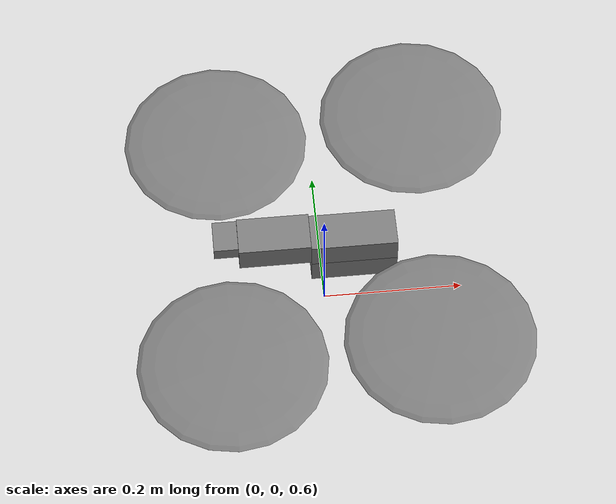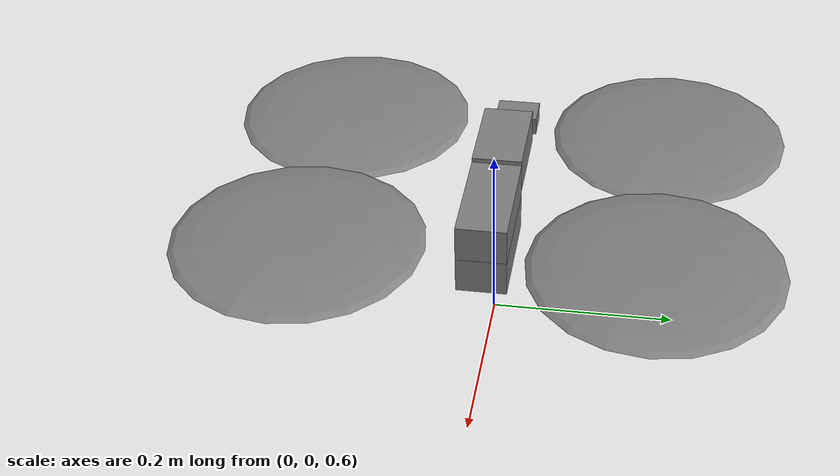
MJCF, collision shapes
<mujoco model="Skydio X2">
  <compiler inertiafromgeom="true" angle="degree" autolimits="true" assetdir="assets"/>

  <option timestep=".005" iterations="50" tolerance="1e-16" solver="Newton" jacobian="dense" cone="pyramidal" density="1.225" viscosity="1.8e-5">
    <flag contact = "enable"/>
  </option>

  <default>
    <default class="x2">
      <geom mass="0"/>
      <motor ctrlrange="0 200"/>
      <mesh scale="0.01 0.01 0.01"/>
      <default class="visual">
        <geom group="2" type="mesh" contype="0" conaffinity="0"/>
      </default>
      <default class="collision">
        <geom group="3" type="box"/>
        <default class="rotor">
          <geom type="ellipsoid" size=".13 .13 .01"/>
        </default>
      </default>
      <site group="5"/>
    </default>
  </default>

  <asset>
    <texture type="2d" file="X2_lowpoly_texture_SpinningProps_1024.png"/>
    <material name="phong3SG" texture="X2_lowpoly_texture_SpinningProps_1024"/>
    <material name="invisible" rgba="0 0 0 0"/>

    <mesh class="x2" file="X2_lowpoly.obj"/>
    <mesh name="BASE" file="stls/Base.STL"/>
    <mesh name="LINK1" file="stls/Link1.STL"/>
    <mesh name="LINK2" file="stls/Link2.STL"/>
    <mesh name="LINK3" file="stls/Link3.STL"/>
    <mesh name="DYNM" file="stls/XH430.STL"/>
  </asset>

  <worldbody>
    <light name="spotlight" mode="targetbodycom" target="x2" pos="0 -1 2"/>
    <body name="x2" pos="0 0 0.7" childclass="x2">
      <freejoint/>
      <camera name="track" pos="-1 0 .5" xyaxes="0 -1 0 1 0 2" mode="trackcom"/>
      <site name="imu" pos="0 0 .02"/>
      <geom material="phong3SG" mesh="X2_lowpoly" class="visual" quat="0 0 1 1"/>
      <geom class="collision" size=".06 .027 .02" pos=".04 0 .02"/>
      <geom class="collision" size=".06 .027 .02" pos=".04 0 .06"/>
      <geom class="collision" size=".05 .027 .02" pos="-.07 0 .065"/>
      <geom class="collision" size=".023 .017 .01" pos="-.137 .008 .065" quat="1 0 0 1"/>
      <geom name="rotor1" class="rotor" pos="-.14 -.18 .05" mass=".25"/>
      <geom name="rotor2" class="rotor" pos="-.14 .18 .05" mass=".25"/>
      <geom name="rotor3" class="rotor" pos=".14 .18 .08" mass=".25"/>
      <geom name="rotor4" class="rotor" pos=".14 -.18 .08" mass=".25"/>
      <geom size=".16 .04 .02" pos="0 0 0.02" type="ellipsoid" mass=".325" class="visual" material="invisible"/>
      <site name="thrust1" pos="-.14 -.18 .05"/>
      <site name="thrust2" pos="-.14 .18 .05"/>
      <site name="thrust3" pos=".14 .18 .08"/>
      <site name="thrust4" pos=".14 -.18 .08"/>
    </body>
  </worldbody>

  <actuator>
    <motor class="x2" name="thrust1" site="thrust1" gear="0 0 1 0 0 -.0201"/>
    <motor class="x2" name="thrust2" site="thrust2" gear="0 0 1 0 0  .0201"/>
    <motor class="x2" name="thrust3" site="thrust3" gear="0 0 1 0 0  .0201"/>
    <motor class="x2" name="thrust4" site="thrust4" gear="0 0 1 0 0 -.0201"/>
  </actuator>

  <sensor>
    <gyro name="body_gyro" site="imu"/>
    <accelerometer name="body_linacc" site="imu"/>
    <framequat name="body_quat" objtype="site" objname="imu"/>
  </sensor>

  <keyframe>
    <key name="hover" qpos="0 0 .3 1 0 0 0" ctrl="3.2495625 3.2495625 3.2495625 3.2495625"/>
  </keyframe>
</mujoco>
